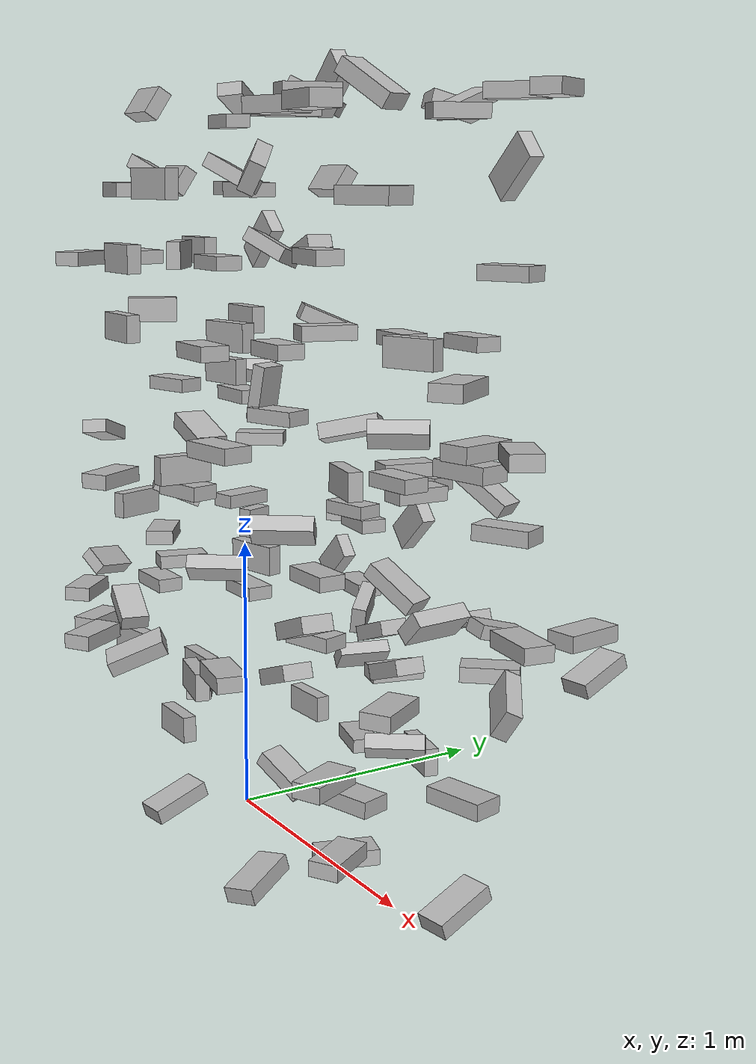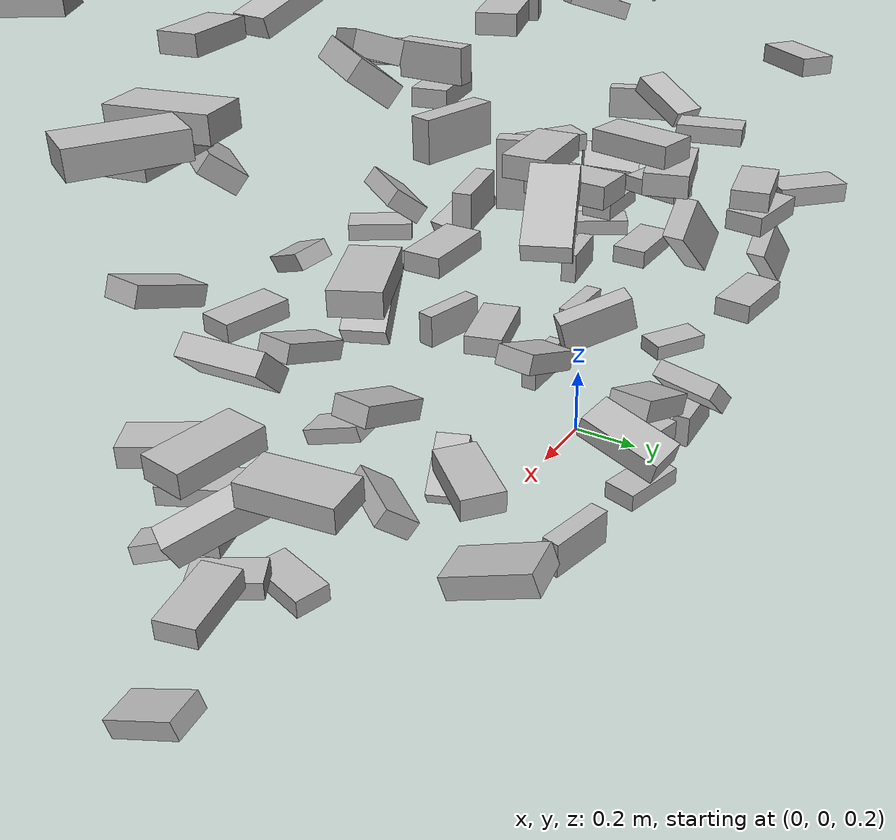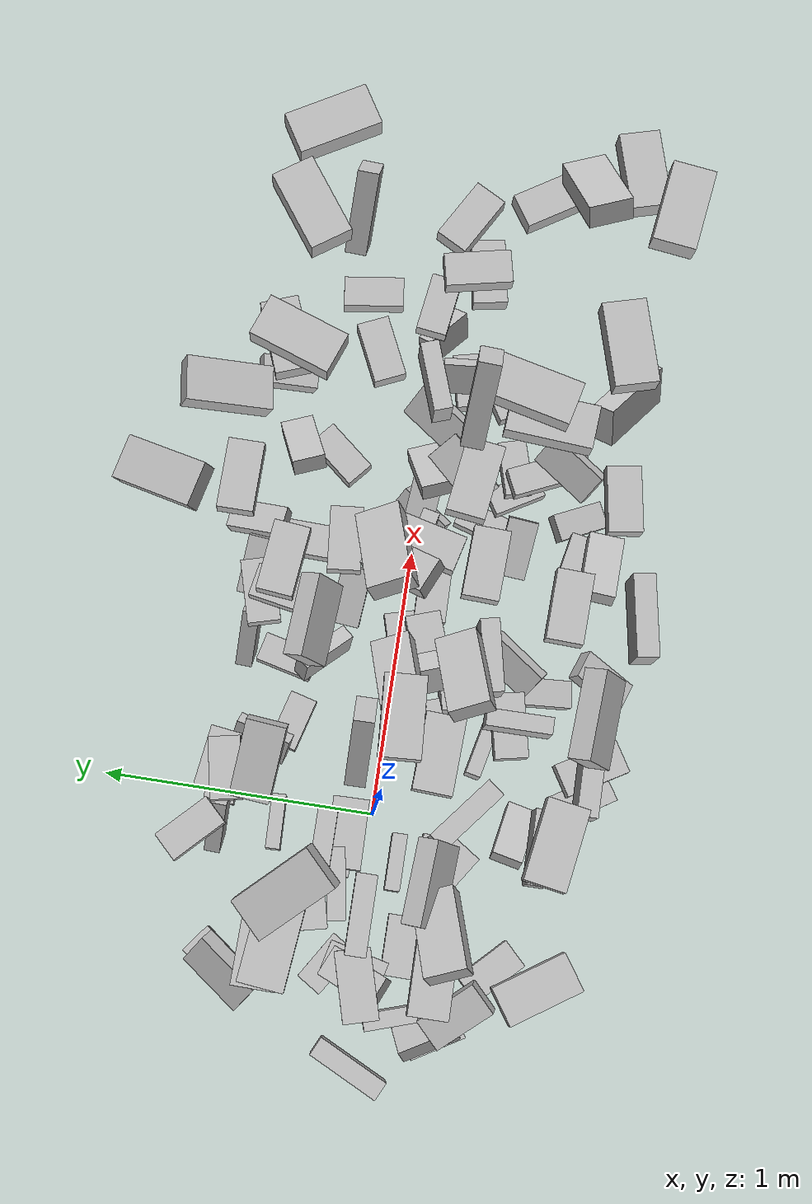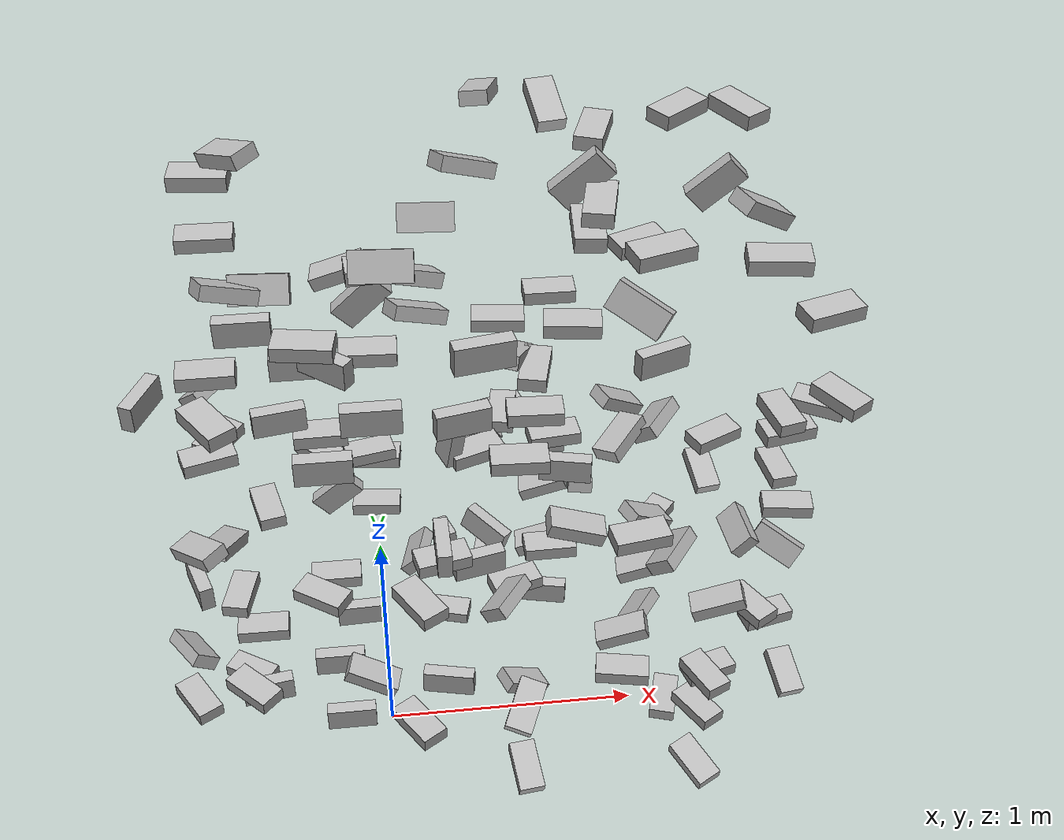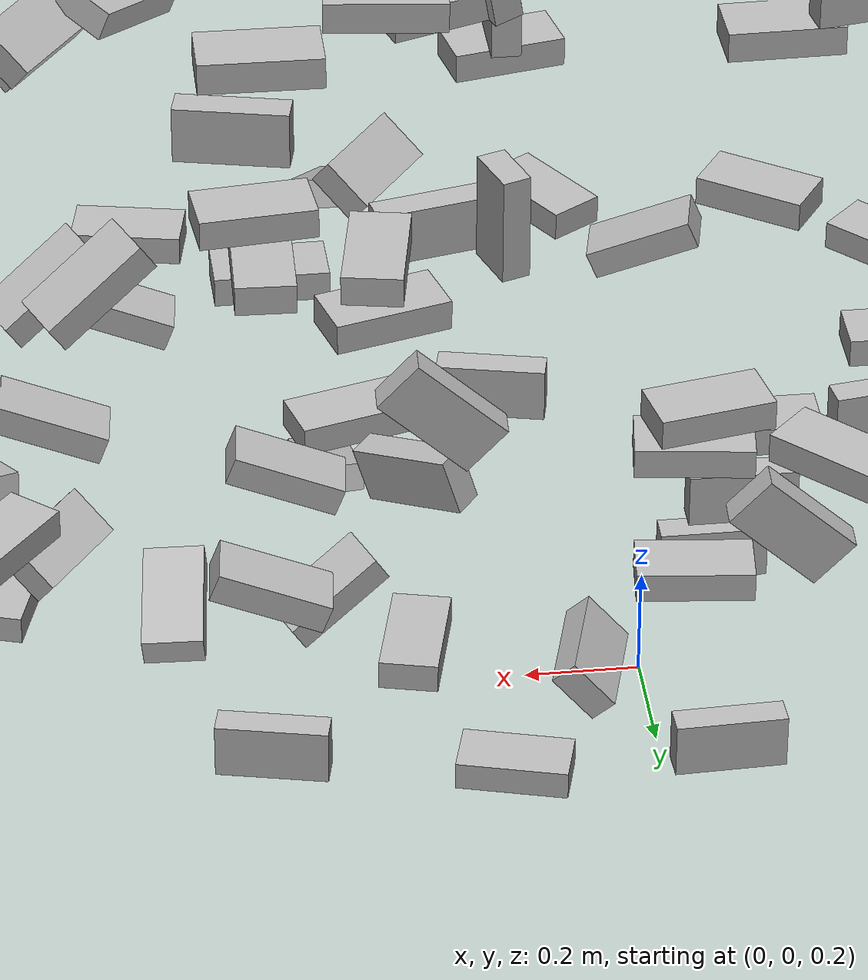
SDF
<?xml version="1.0" ?>
<sdf version="1.5">
  <model name="dbrick_stack">

    <include>
      <name>d0</name>
      <pose frame=''>-0.159002 -0.204749 0.29849 0.000197 -1.3e-05 0.000845</pose>
      <uri>model://dbrick</uri>
    </include>
    <include>
      <name>d1</name>
      <pose frame=''>0 -0.459723 2.04849 0.000197 -1.3e-05 0.000845</pose>
      <uri>model://dbrick</uri>
    </include>
    <include>
      <name>d2</name>
      <pose frame=''>-0.2409 0.141432 1.79849 0.000197 -1.3e-05 0.000845</pose>
      <uri>model://dbrick</uri>
    </include>
    <include>
      <name>d3</name>
      <pose frame=''>-0.39794 0.02585 2.04849 0.000197 -1.3e-05 0.000845</pose>
      <uri>model://dbrick</uri>
    </include>
    <include>
      <name>d4</name>
      <pose frame=''>-0.1629 -0.39564 1.79849 0.000197 -1.3e-05 0.000845</pose>
      <uri>model://dbrick</uri>
    </include>
    <include>
      <name>d5</name>
      <pose frame=''>-0.186008 -0.09158 0.5 0 -0 0</pose>
      <uri>model://dbrick</uri>
    </include>
    <include>
      <name>d6</name>
      <pose frame=''>-0.175951 0.107717 0.774998 -1.5708 -2e-05 -0.003486</pose>
      <uri>model://dbrick</uri>
    </include>
    <include>
      <name>d7</name>
      <pose frame=''>-0.455829 -0.13263 0.774998 -1.5708 -2e-05 -0.003486</pose>
      <uri>model://dbrick</uri>
    </include>
    <include>
      <name>d8</name>
      <pose frame=''>0.227001 0.233589 2.304224 -0.581093 -4e-06 -0.062141</pose>
      <uri>model://dbrick</uri>
    </include>
    <include>
      <name>d9</name>
      <pose frame=''>-0.314268 -0.109297 2.304224 -0.581093 -4e-06 -0.062141</pose>
      <uri>model://dbrick</uri>
    </include>
    <include>
      <name>d10</name>
      <pose frame=''>0.060434 -0.383261 2.554224 -0.581093 -4e-06 -0.062141</pose>
      <uri>model://dbrick</uri>
    </include>
    <include>
      <name>d11</name>
      <pose frame=''>0.15144 -0.117381 2.330433 1.25558 0.376008 0.279887</pose>
      <uri>model://dbrick</uri>
    </include>
    <include>
      <name>d12</name>
      <pose frame=''>0.171229 0.023884 2.080433 1.25558 0.376008 0.279887</pose>
      <uri>model://dbrick</uri>
    </include>
    <include>
      <name>d13</name>
      <pose frame=''>0.339518 0.095438 2.580433 1.25558 0.376008 0.279887</pose>
      <uri>model://dbrick</uri>
    </include>
    <include>
      <name>d14</name>
      <pose frame=''>-0.416178 -0.145607 2.330433 1.25558 0.376008 0.279887</pose>
      <uri>model://dbrick</uri>
    </include>
    <include>
      <name>d15</name>
      <pose frame=''>0.271674 -0.064169 1.597976 -1.5708 1.38604 -2.78475</pose>
      <uri>model://dbrick</uri>
    </include>
    <include>
      <name>d16</name>
      <pose frame=''>-0.384418 0.18962 2.6074 -1.47754 -0.315178 -0.823493</pose>
      <uri>model://dbrick</uri>
    </include>
    <include>
      <name>d17</name>
      <pose frame=''>-0.614704 -0.284804 1.3574 -1.47754 -0.315178 -0.823493</pose>
      <uri>model://dbrick</uri>
    </include>
    <include>
      <name>d18</name>
      <pose frame=''>0.528574 -0.127156 0.320548 1.57083 0.543761 0.363115</pose>
      <uri>model://dbrick</uri>
    </include>
    <include>
      <name>d19</name>
      <pose frame=''>0.568006 0 1.825 -1.5708 -1e-06 -1.81364</pose>
      <uri>model://dbrick</uri>
    </include>
    <include>
      <name>d20</name>
      <pose frame=''>0.434794 0.370416 0.575004 -1.57068 2.7e-05 -1.80586</pose>
      <uri>model://dbrick</uri>
    </include>
    <include>
      <name>d21</name>
      <pose frame=''>0.731074 -0.160918 2.574998 -1.57084 1e-05 -1.80522</pose>
      <uri>model://dbrick</uri>
    </include>
    <include>
      <name>d22</name>
      <pose frame=''>-0.537357 0 0.824999 -1.57083 0 -1.80383</pose>
      <uri>model://dbrick</uri>
    </include>
    <include>
      <name>d23</name>
      <pose frame=''>-0.488657 -0.424528 0.775 -1.5708 0 -0.784797</pose>
      <uri>model://dbrick</uri>
    </include>
    <include>
      <name>d24</name>
      <pose frame=''>-0.482431 0.202994 2.525 -1.57078 -8e-06 -0.102342</pose>
      <uri>model://dbrick</uri>
    </include>
    <include>
      <name>d25</name>
      <pose frame=''>0 0.493994 0.775 -1.57078 -8e-06 -0.102342</pose>
      <uri>model://dbrick</uri>
    </include>
    <include>
      <name>d26</name>
      <pose frame=''>0.479081 0.35788 1.775 -1.57078 -8e-06 -0.102342</pose>
      <uri>model://dbrick</uri>
    </include>
    <include>
      <name>d27</name>
      <pose frame=''>-0.58793 0.354508 1.549822 -2.24338 0.000538 0.942008</pose>
      <uri>model://dbrick</uri>
    </include>
    <include>
      <name>d28</name>
      <pose frame=''>1 0 1.549822 -2.24338 0.000538 0.942008</pose>
      <uri>model://dbrick</uri>
    </include>
    <include>
      <name>d29</name>
      <pose frame=''>1 0 0.549822 -2.24338 0.000538 0.942008</pose>
      <uri>model://dbrick</uri>
    </include>
    <include>
      <name>d30</name>
      <pose frame=''>0.43375 -0.336843 1.049822 -2.24338 0.000538 0.942008</pose>
      <uri>model://dbrick</uri>
    </include>
    <include>
      <name>d31</name>
      <pose frame=''>1 -0.405395 1.299822 -2.24338 0.000538 0.942008</pose>
      <uri>model://dbrick</uri>
    </include>
    <include>
      <name>d32</name>
      <pose frame=''>0.667152 0.330834 0.348492 -1.2e-05 9e-06 -0.219058</pose>
      <uri>model://dbrick</uri>
    </include>
    <include>
      <name>d33</name>
      <pose frame=''>0.687261 0.005526 1.348492 -1.2e-05 9e-06 -0.219058</pose>
      <uri>model://dbrick</uri>
    </include>
    <include>
      <name>d34</name>
      <pose frame=''>0.221679 -0.316146 0.598492 -1.2e-05 9e-06 -0.219058</pose>
      <uri>model://dbrick</uri>
    </include>
    <include>
      <name>d35</name>
      <pose frame=''>-0.076411 0.319029 2.056619 -1.5708 -0.356957 -0.09265</pose>
      <uri>model://dbrick</uri>
    </include>
    <include>
      <name>d36</name>
      <pose frame=''>1 0 0.806619 -1.5708 -0.356957 -0.09265</pose>
      <uri>model://dbrick</uri>
    </include>
    <include>
      <name>d37</name>
      <pose frame=''>0.867278 -0.322243 0.806619 -1.5708 -0.356957 -0.09265</pose>
      <uri>model://dbrick</uri>
    </include>
    <include>
      <name>d38</name>
      <pose frame=''>0.627216 0.18901 0.806619 -1.5708 -0.356957 -0.09265</pose>
      <uri>model://dbrick</uri>
    </include>
    <include>
      <name>d39</name>
      <pose frame=''>0.679754 0.502002 0.806619 -1.5708 -0.356957 -0.09265</pose>
      <uri>model://dbrick</uri>
    </include>
    <include>
      <name>d40</name>
      <pose frame=''>1.17925 -0.438559 1.056619 -1.5708 -0.356957 -0.09265</pose>
      <uri>model://dbrick</uri>
    </include>
    <include>
      <name>d41</name>
      <pose frame=''>1 0 1.072452 1.57089 0.572042 0.391576</pose>
      <uri>model://dbrick</uri>
    </include>
    <include>
      <name>d42</name>
      <pose frame=''>0.942236 0.385775 1.322452 1.57089 0.572042 0.391576</pose>
      <uri>model://dbrick</uri>
    </include>
    <include>
      <name>d43</name>
      <pose frame=''>1.20757 -0.238502 2.572452 1.57089 0.572042 0.391576</pose>
      <uri>model://dbrick</uri>
    </include>
    <include>
      <name>d44</name>
      <pose frame=''>0.404892 0.46886 1.099675 3.13965 0.733785 3.09129</pose>
      <uri>model://dbrick</uri>
    </include>
    <include>
      <name>d45</name>
      <pose frame=''>-0.154358 0.490646 0.849675 3.13965 0.733785 3.09129</pose>
      <uri>model://dbrick</uri>
    </include>
    <include>
      <name>d46</name>
      <pose frame=''>1.20068 0.267465 2.349675 3.13965 0.733785 3.09129</pose>
      <uri>model://dbrick</uri>
    </include>
    <include>
      <name>d47</name>
      <pose frame=''>0.690469 -0.05407 2.599675 3.13965 0.733785 3.09129</pose>
      <uri>model://dbrick</uri>
    </include>
    <include>
      <name>d48</name>
      <pose frame=''>1.19427 -0.330485 0.324998 1.57085 0.000157 -1.03299</pose>
      <uri>model://dbrick</uri>
    </include>
    <include>
      <name>d49</name>
      <pose frame=''>0.116927 -0.571585 1.324998 1.57085 0.000157 -1.03299</pose>
      <uri>model://dbrick</uri>
    </include>
    <include>
      <name>d50</name>
      <pose frame=''>-0.716187 -0.285831 0.574998 1.57085 0.000157 -1.03299</pose>
      <uri>model://dbrick</uri>
    </include>
    <include>
      <name>d51</name>
      <pose frame=''>1.2737 0.352261 2.574998 1.57085 0.000157 -1.03299</pose>
      <uri>model://dbrick</uri>
    </include>
    <include>
      <name>d52</name>
      <pose frame=''>1.36508 -0.266131 0.824998 1.57085 0.000157 -1.03299</pose>
      <uri>model://dbrick</uri>
    </include>
    <include>
      <name>d53</name>
      <pose frame=''>0.824242 -0.394745 2.347201 -0.459369 0.338975 -0.627792</pose>
      <uri>model://dbrick</uri>
    </include>
    <include>
      <name>d54</name>
      <pose frame=''>1.5351 0.016135 0.847201 -0.459369 0.338975 -0.627792</pose>
      <uri>model://dbrick</uri>
    </include>
    <include>
      <name>d55</name>
      <pose frame=''>0.884059 -0.355356 2.524998 1.57084 -1e-06 0.27518</pose>
      <uri>model://dbrick</uri>
    </include>
    <include>
      <name>d56</name>
      <pose frame=''>1.42751 -0.374193 2.274998 1.57084 -1e-06 0.27518</pose>
      <uri>model://dbrick</uri>
    </include>
    <include>
      <name>d57</name>
      <pose frame=''>0.506639 0 0.774998 1.57084 -1e-06 0.27518</pose>
      <uri>model://dbrick</uri>
    </include>
    <include>
      <name>d58</name>
      <pose frame=''>0.493977 0.442686 1.274998 1.57084 -1e-06 0.27518</pose>
      <uri>model://dbrick</uri>
    </include>
    <include>
      <name>d59</name>
      <pose frame=''>-0.572985 0 1.524998 1.57084 -1e-06 0.27518</pose>
      <uri>model://dbrick</uri>
    </include>
    <include>
      <name>d60</name>
      <pose frame=''>1.49406 -0.097895 0.575005 1.5707 -0.000137 0.228206</pose>
      <uri>model://dbrick</uri>
    </include>
    <include>
      <name>d61</name>
      <pose frame=''>0.649711 0.484067 2.555294 1.57081 0.340536 -1.42516</pose>
      <uri>model://dbrick</uri>
    </include>
    <include>
      <name>d62</name>
      <pose frame=''>1.58349 -0.183792 0.305294 1.57081 0.340536 -1.42516</pose>
      <uri>model://dbrick</uri>
    </include>
    <include>
      <name>d63</name>
      <pose frame=''>1.34614 0.508902 0.805294 1.57081 0.340536 -1.42516</pose>
      <uri>model://dbrick</uri>
    </include>
    <include>
      <name>d64</name>
      <pose frame=''>0.494256 0.050481 1.850581 -1.59577 -0.404556 -1.97374</pose>
      <uri>model://dbrick</uri>
    </include>
    <include>
      <name>d65</name>
      <pose frame=''>-0.56474 0 1.100581 -1.59577 -0.404556 -1.97374</pose>
      <uri>model://dbrick</uri>
    </include>
    <include>
      <name>d66</name>
        <pose frame=''>-0.003689 0.086742 2.100943 3.14132 0.769792 -3.13146</pose>
      <uri>model://dbrick</uri>
    </include>
    <include>
      <name>d67</name>
        <pose frame=''>0.439335 0.585756 2.556676 -1.42102 -0.276488 -1.85854</pose>
      <uri>model://dbrick</uri>
    </include>
    <include>
      <name>d68</name>
        <pose frame=''>-0.208238 0.552925 1.025 1.5708 -0 2.36808</pose>
      <uri>model://dbrick</uri>
    </include>
    <include>
      <name>d69</name>
        <pose frame=''>1.28257 0.203122 1.274881 -1.5708 3e-06 -2.70724</pose>
      <uri>model://dbrick</uri>
    </include>
    <include>
      <name>d70</name>
        <pose frame=''>0.674475 -0.091739 2.075133 -1.5708 0.001375 3.00619</pose>
      <uri>model://dbrick</uri>
    </include>
    <include>
      <name>d71</name>
        <pose frame=''>-0.133609 -0.183068 2.0485 1.1e-05 -0 -0.672185</pose>
      <uri>model://dbrick</uri>
    </include>
    <include>
      <name>d72</name>
        <pose frame=''>0.833594 -0.521409 0.824998 1.57083 -8e-06 -0.192502</pose>
      <uri>model://dbrick</uri>
    </include>
    <include>
      <name>d73</name>
        <pose frame=''>1.55969 0.049213 1.025 -1.5708 3e-06 -0.138379</pose>
      <uri>model://dbrick</uri>
    </include>
    <include>
      <name>d74</name>
        <pose frame=''>0.004749 -0.102029 2.024998 -1.57084 -3e-06 -0.044556</pose>
      <uri>model://dbrick</uri>
    </include>
    <include>
      <name>d75</name>
        <pose frame=''>-0.181742 0.085627 1.524822 -1.57076 -0 0.018671</pose>
      <uri>model://dbrick</uri>
    </include>
    <include>
      <name>d76</name>
        <pose frame=''>-0.512018 -0.161329 2.024994 -1.57081 3.2e-05 0.005484</pose>
      <uri>model://dbrick</uri>
    </include>
    <include>
      <name>d77</name>
        <pose frame=''>0.261087 0.331677 0.274857 -1.5708 0.000137 -0.261447</pose>
      <uri>model://dbrick</uri>
    </include>
    <include>
      <name>d78</name>
        <pose frame=''>0.354362 -0.145673 1.048498 -3.14158 -2e-05 0.220302</pose>
      <uri>model://dbrick</uri>
    </include>
    <include>
      <name>d79</name>
        <pose frame=''>0.210105 -0.329515 1.275 1.5708 0 0.203738</pose>
      <uri>model://dbrick</uri>
    </include>
    <include>
      <name>d80</name>
        <pose frame=''>0.353139 -0.05945 1.525001 1.57084 1.6e-05 0.338845</pose>
      <uri>model://dbrick</uri>
    </include>
    <include>
      <name>d81</name>
        <pose frame=''>-0.321636 0.094184 1.598508 0.000201 0.000142 0.166547</pose>
      <uri>model://dbrick</uri>
    </include>
    <include>
      <name>d82</name>
        <pose frame=''>0.235621 -0.087015 1.095 -1.36001 1.57079 -2.59197</pose>
      <uri>model://dbrick</uri>
    </include>
    <include>
      <name>d83</name>
        <pose frame=''>-0.218636 -0.225336 1.025 1.5708 -0 -0.589781</pose>
      <uri>model://dbrick</uri>
    </include>
    <include>
      <name>d84</name>
        <pose frame=''>0.043506 0.003511 2.274865 1.57075 6e-06 0.064113</pose>
      <uri>model://dbrick</uri>
    </include>
    <include>
      <name>d85</name>
        <pose frame=''>0.9868 0.423676 2.024981 1.57082 2.3e-05 0.365256</pose>
      <uri>model://dbrick</uri>
    </include>
    <include>
      <name>d86</name>
        <pose frame=''>1.01615 0.036061 1.7985 -2e-06 -1e-06 0.337811</pose>
      <uri>model://dbrick</uri>
    </include>
    <include>
      <name>d87</name>
        <pose frame=''>1.07295 0.367752 2.574996 1.57005 7.6e-05 0.621631</pose>
      <uri>model://dbrick</uri>
    </include>
    <include>
      <name>d88</name>
        <pose frame=''>1.22383 -0.303206 0.525 1.5708 0 0.281377</pose>
      <uri>model://dbrick</uri>
    </include>
    <include>
      <name>d89</name>
        <pose frame=''>-0.015842 0.475256 1.074997 1.57079 -2.7e-05 0.20017</pose>
      <uri>model://dbrick</uri>
    </include>
    <include>
      <name>d90</name>
        <pose frame=''>1.58479 -0.205231 1.775 1.5708 0 -0.994231</pose>
      <uri>model://dbrick</uri>
    </include>
    <include>
      <name>d91</name>
        <pose frame=''>1.59558 0.00116 1.575004 1.57097 -1.7e-05 -0.507954</pose>
      <uri>model://dbrick</uri>
    </include>
    <include>
      <name>d92</name>
        <pose frame=''>0.546895 -0.166546 1.775 1.57079 -0 -0.041973</pose>
      <uri>model://dbrick</uri>
    </include>
    <include>
      <name>d93</name>
        <pose frame=''>1.46314 -0.073633 1.524997 1.57074 -0 0.176982</pose>
      <uri>model://dbrick</uri>
    </include>
    <include>
      <name>d94</name>
        <pose frame=''>-0.411709 0.202506 1.074992 -1.57081 -2e-06 -1.34083</pose>
      <uri>model://dbrick</uri>
    </include>
    <include>
      <name>d95</name>
        <pose frame=''>1.19095 -0.377221 0.574988 1.57075 4.1e-05 -1.13744</pose>
      <uri>model://dbrick</uri>
    </include>
    <include>
      <name>d96</name>
        <pose frame=''>1.44658 -0.03993 1.575002 1.5708 1.9e-05 -1.35764</pose>
      <uri>model://dbrick</uri>
    </include>
    <include>
      <name>d97</name>
        <pose frame=''>0.492421 -0.53076 0.301819 1.57085 0.298301 -1.44996</pose>
      <uri>model://dbrick</uri>
    </include>
    <include>
      <name>d98</name>
        <pose frame=''>1.13416 -0.572632 0.3004 1.71697 0.204182 -1.07655</pose>
      <uri>model://dbrick</uri>
    </include>
    <include>
      <name>d99</name>
        <pose frame=''>0.667545 0.296599 1.275 1.5708 -0 -1.60203</pose>
      <uri>model://dbrick</uri>
    </include>
    <include>
      <name>d100</name>
        <pose frame=''>1.57047 0.261932 1.025 1.5708 -0 -1.43415</pose>
      <uri>model://dbrick</uri>
    </include>
    <include>
      <name>d101</name>
        <pose frame=''>0.091391 -0.642022 0.775 1.5708 0 -0.998015</pose>
      <uri>model://dbrick</uri>
    </include>
    <include>
      <name>d102</name>
        <pose frame=''>-0.704273 -0.248631 0.815206 0.863748 -0.162407 -1.0319</pose>
      <uri>model://dbrick</uri>
    </include>
    <include>
      <name>d103</name>
        <pose frame=''>-0.552824 0.085082 0.275 -1.57079 -0 -0.557269</pose>
      <uri>model://dbrick</uri>
    </include>
    <include>
      <name>d104</name>
        <pose frame=''>-0.50259 -0.403103 2.025 -1.5708 -0 -0.976965</pose>
      <uri>model://dbrick</uri>
    </include>
    <include>
      <name>d105</name>
        <pose frame=''>-0.059828 -0.436128 0.81038 -1.57069 0.404573 -0.21265</pose>
      <uri>model://dbrick</uri>
    </include>
    <include>
      <name>d106</name>
        <pose frame=''>-0.185448 -0.370894 2.275 -1.5708 -0 -0.163132</pose>
      <uri>model://dbrick</uri>
    </include>
    <include>
      <name>d107</name>
        <pose frame=''>-0.496511 0.236222 2.274996 -1.57082 3.5e-05 -0.016629</pose>
      <uri>model://dbrick</uri>
    </include>
    <include>
      <name>d108</name>
        <pose frame=''>0.466486 -0.395499 1.774998 -1.57077 -7e-06 -0.036032</pose>
      <uri>model://dbrick</uri>
    </include>
    <include>
      <name>d109</name>
        <pose frame=''>0.010456 0.505064 1.025 -1.57081 4e-06 -0.127307</pose>
      <uri>model://dbrick</uri>
    </include>
    <include>
      <name>d110</name>
        <pose frame=''>-0.577223 0.385115 1.275 -1.5708 -0 0.92662</pose>
      <uri>model://dbrick</uri>
    </include>
    <include>
      <name>d111</name>
        <pose frame=''>0.495754 0.368791 1.325001 -1.57073 -5.1e-05 1.39014</pose>
      <uri>model://dbrick</uri>
    </include>
    <include>
      <name>d112</name>
        <pose frame=''>0.793182 0.35225 2.52488 -1.5708 3.5e-05 1.22738</pose>
      <uri>model://dbrick</uri>
    </include>
    <include>
      <name>d113</name>
        <pose frame=''>1.09893 0.293439 0.775 -1.5708 -0 0.871658</pose>
      <uri>model://dbrick</uri>
    </include>
    <include>
      <name>d114</name>
        <pose frame=''>1.08321 -0.233819 0.274998 -1.57076 -0 1.27933</pose>
      <uri>model://dbrick</uri>
    </include>
    <include>
      <name>d115</name>
        <pose frame=''>-0.10053 0.333621 0.298387 -3.14159 -2.1e-05 0.035533</pose>
      <uri>model://dbrick</uri>
    </include>
    <include>
      <name>d116</name>
        <pose frame=''>0.673344 0.219436 1.325001 -1.57075 -6e-06 0.097901</pose>
      <uri>model://dbrick</uri>
    </include>
    <include>
      <name>d117</name>
        <pose frame=''>0.683731 0.504059 1.774997 -1.5708 -3.5e-05 -0.007809</pose>
      <uri>model://dbrick</uri>
    </include>
    <include>
      <name>d118</name>
        <pose frame=''>1.2171 -0.43469 2.525 -1.57079 -0 -0.133902</pose>
      <uri>model://dbrick</uri>
    </include>
    <include>
      <name>d119</name>
        <pose frame=''>0.852528 -0.538452 1.525 -1.57079 -0 0.150649</pose>
      <uri>model://dbrick</uri>
    </include>
    <include>
      <name>d120</name>
        <pose frame=''>0.643546 -0.495668 1.550601 -1.57075 0.283777 -0.074653</pose>
      <uri>model://dbrick</uri>
    </include>
    <include>
      <name>d121</name>
        <pose frame=''>0.626777 -0.065599 1.025002 -1.57078 1.2e-05 -3.13012</pose>
      <uri>model://dbrick</uri>
    </include>
    <include>
      <name>d122</name>
        <pose frame=''>-0.761473 -0.002589 1.7985 0 -0 -2.01795</pose>
      <uri>model://dbrick</uri>
    </include>
    <include>
      <name>d123</name>
        <pose frame=''>0.421123 0.246138 0.825047 -0.145107 0.26852 -0.764897</pose>
      <uri>model://dbrick</uri>
    </include>
    <include>
      <name>d124</name>
        <pose frame=''>0.688918 -0.212216 2.525 -1.5708 1e-06 -1.64546</pose>
      <uri>model://dbrick</uri>
    </include>
    <include>
      <name>d125</name>
        <pose frame=''>0.299765 -0.209694 1.7985 -4e-06 1e-06 0.200864</pose>
      <uri>model://dbrick</uri>
    </include>
    <include>
      <name>d126</name>
        <pose frame=''>-0.658381 -0.134313 1.048502 -6.1e-05 -0 -1.24975</pose>
      <uri>model://dbrick</uri>
    </include>
    <include>
      <name>d127</name>
        <pose frame=''>-0.460959 -0.241476 0.5485 0 -0 0.154159</pose>
      <uri>model://dbrick</uri>
    </include>
    <include>
      <name>d128</name>
        <pose frame=''>0.342479 -0.494706 2.2985 0 -0 0.163884</pose>
      <uri>model://dbrick</uri>
    </include>
    <include>
      <name>d129</name>
        <pose frame=''>0.83533 0.525416 0.802502 -1.63733 -0.270351 -1.66961</pose>
      <uri>model://dbrick</uri>
    </include>
    <include>
      <name>d130</name>
        <pose frame=''>0.85975 -0.082904 1.556803 1.87498 0.203699 -2.27932</pose>
      <uri>model://dbrick</uri>
    </include>
    <include>
      <name>d131</name>
        <pose frame=''>0.212065 -0.348149 1.348501 2e-05 2.3e-05 -1.56638</pose>
      <uri>model://dbrick</uri>
    </include>
    <include>
      <name>d132</name>
        <pose frame=''>1.33269 -0.091586 1.052329 -0.763158 -0 -1.4875</pose>
      <uri>model://dbrick</uri>
    </include>
    <include>
      <name>d133</name>
        <pose frame=''>0.151488 0.41407 0.552354 2.38003 -0 -1.83224</pose>
      <uri>model://dbrick</uri>
    </include>
    <include>
      <name>d134</name>
        <pose frame=''>0.468161 -0.645843 0.819192 -1.80835 0.390523 -2.01871</pose>
      <uri>model://dbrick</uri>
    </include>

  </model>
</sdf>

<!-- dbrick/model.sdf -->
<sdf version="1.5">
  <model name="dbrick">
    <static>false</static>
    <self_collide>true</self_collide>
    <link name="link">
      <inertial>
        <mass>2.0</mass>
          <inertia>
            <ixx>1.984833e-2</ixx>
            <ixy>0.0</ixy>
            <ixz>0.0</ixz>
            <iyy>6.433333e-2</iyy>
            <iyz>0.0</iyz>
            <izz>7.584833e-2</izz>
          </inertia>
      </inertial>
      <collision name="dbrickC">
        <geometry>
          <box>
            <size>0.19 0.05 0.097</size>
          </box>
        </geometry>
      </collision>
      <visual name="dbrickV">
        <cast_shadows>false</cast_shadows>
        <geometry>
          <box>
            <size>0.19 0.05 0.097</size>
          </box>
        </geometry>
        <material>
          <script>
            <uri>model://dbrick/materials/scripts</uri>
            <uri>model://dbrick/materials/textures</uri>
            <name>vrc/dbrick</name>
          </script>
        </material>
      </visual>
    </link>
  </model>
</sdf>
